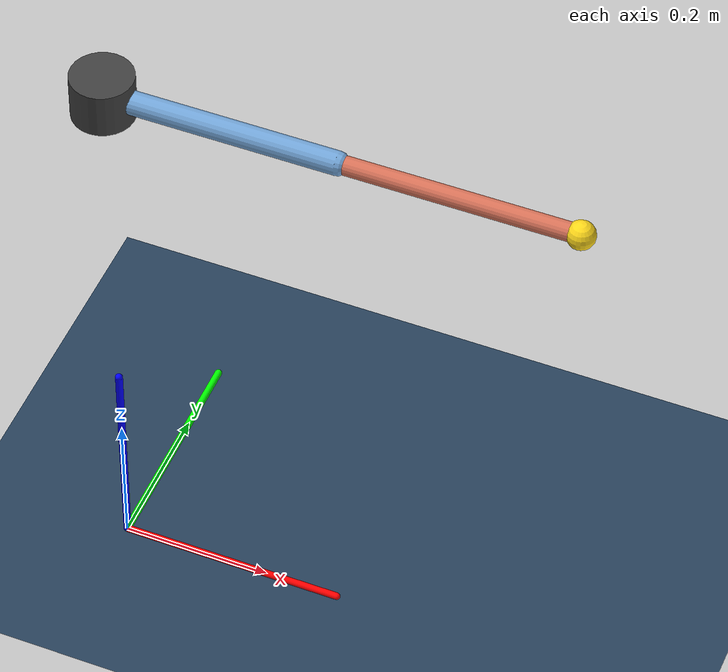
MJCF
<mujoco model="dp_scene">

  <statistic center="0.3 0 0.5" extent="1.5"/>

  <option timestep="0.001" gravity="0 0 -9.81" integrator="RK4"/>

  <visual>
    <global offwidth="1280" offheight="960" azimuth="90" elevation="-5" fovy="45"/>
    <headlight diffuse="0.6 0.6 0.6" ambient="0.3 0.3 0.3" specular="0 0 0"/>
    <rgba haze="0.15 0.25 0.35 1"/>
  </visual>

  <asset>
    <texture type="skybox" builtin="gradient" rgb1="0.3 0.5 0.7" rgb2="0 0 0" width="512" height="3072"/>
    <texture type="2d" name="groundplane" builtin="checker" mark="edge" rgb1="0.2 0.3 0.4" rgb2="0.1 0.2 0.3" markrgb="0.8 0.8 0.8" width="300" height="300"/>
    <material name="groundplane" texture="groundplane" texuniform="true" texrepeat="5 5" reflectance="0.2"/>
  </asset>

  <include file="double_pendulum.xml"/>

  <worldbody>
    <light pos="0 0 2.5" dir="0 0 -1" directional="true"/>
    <geom name="floor" size="0 0 0.05" type="plane" material="groundplane"/>

    <geom type="capsule" fromto="0 0 0 0.3 0 0" size="0.005" rgba="1 0 0 1" contype="0" conaffinity="0"/>
    <geom type="capsule" fromto="0 0 0 0 0.3 0" size="0.005" rgba="0 1 0 1" contype="0" conaffinity="0"/>
    <geom type="capsule" fromto="0 0 0 0 0 0.3" size="0.005" rgba="0 0 1 1" contype="0" conaffinity="0"/>
  </worldbody>

</mujoco>

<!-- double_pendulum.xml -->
<mujoco model="rotary_double_pendulum">

  <compiler angle="radian" autolimits="true"/>

  <option timestep="0.005" gravity="0 0 -9.81" integrator="RK4"/>

  <default>
    <joint damping="0.07" armature="0.002" frictionloss="0.001"/>
    <geom contype="0" conaffinity="0"/>
  </default>

  <worldbody>

    <body name="base" pos="0 0 0.8">

      <geom name="mount" type="cylinder" size="0.04 0.03" rgba="0.25 0.25 0.25 1" mass="0.0"/>

      <body name="link1" pos="0 0 0">
        <joint name="joint1" type="hinge" axis="0 -1 0" pos="0 0 0"/>
        <geom name="link1_rod" type="capsule" fromto="0.01 0 0  0.30 0 0" size="0.015" mass="0.50" rgba="0.45 0.65 0.85 1"/>
        <inertial pos="0.15 0 0" mass="0.50" diaginertia="0.00010 0.00385 0.00385"/>

        <body name="link2" pos="0.30 0 0">
          <joint name="joint2" type="hinge" axis="0 -1 0" pos="0 0 0" range="-3.1416 3.1416"/>
          <geom name="link2_rod" type="capsule" fromto="0.01 0 0  0.30 0 0" size="0.012" mass="0.30" rgba="0.85 0.45 0.35 1"/>
          <inertial pos="0.15 0 0" mass="0.30" diaginertia="0.00006 0.00231 0.00231"/>
          <geom name="tip" type="sphere" size="0.018" pos="0.30 0 0" rgba="1.0 0.85 0.1 1" mass="0"/>
        </body>

      </body>
    </body>

  </worldbody>

  <actuator>
    <motor name="torque1" joint="joint1" gear="1" ctrllimited="false"/>
  </actuator>

  <sensor>
    <jointpos name="q1"  joint="joint1"/>
    <jointpos name="q2"  joint="joint2"/>
    <jointvel name="dq1" joint="joint1"/>
    <jointvel name="dq2" joint="joint2"/>
  </sensor>

</mujoco>
